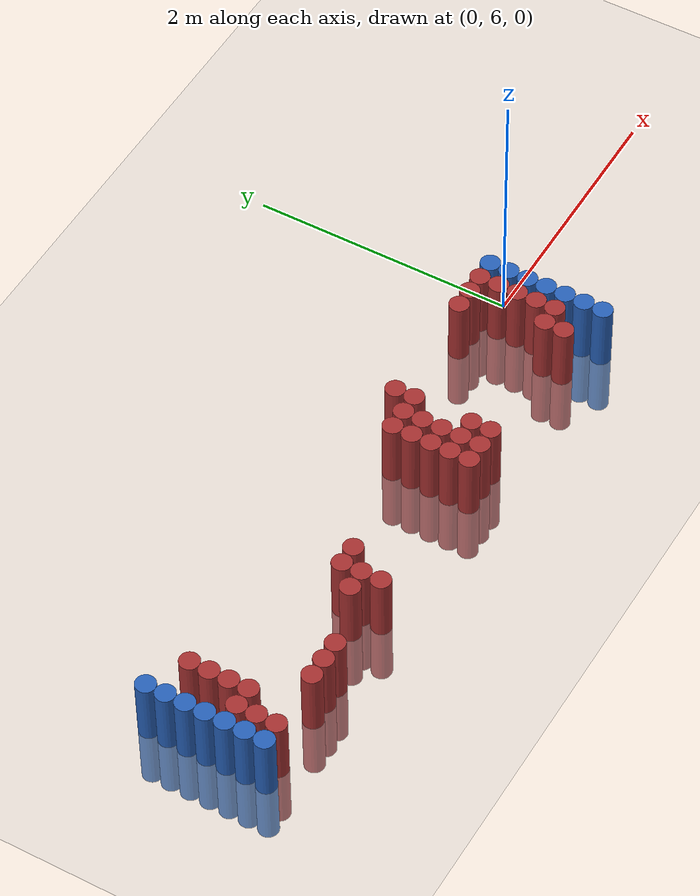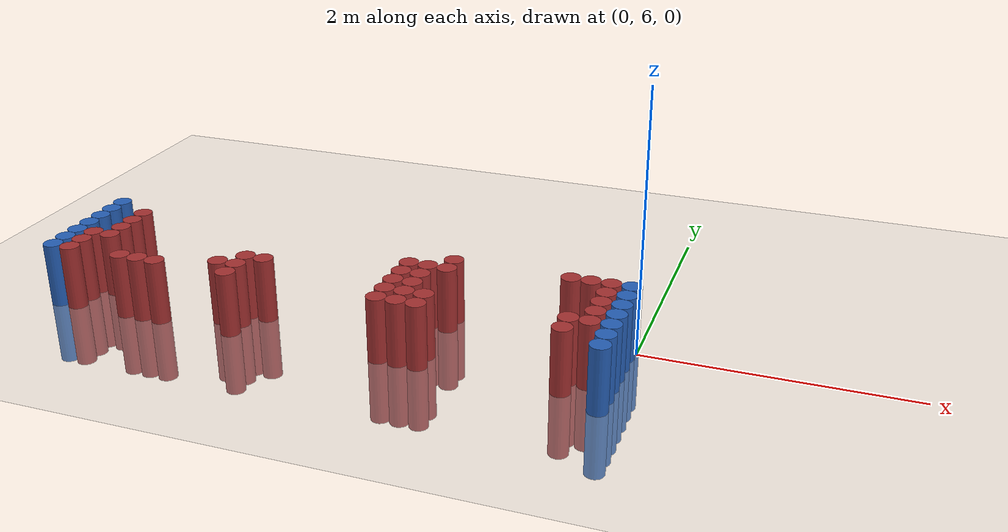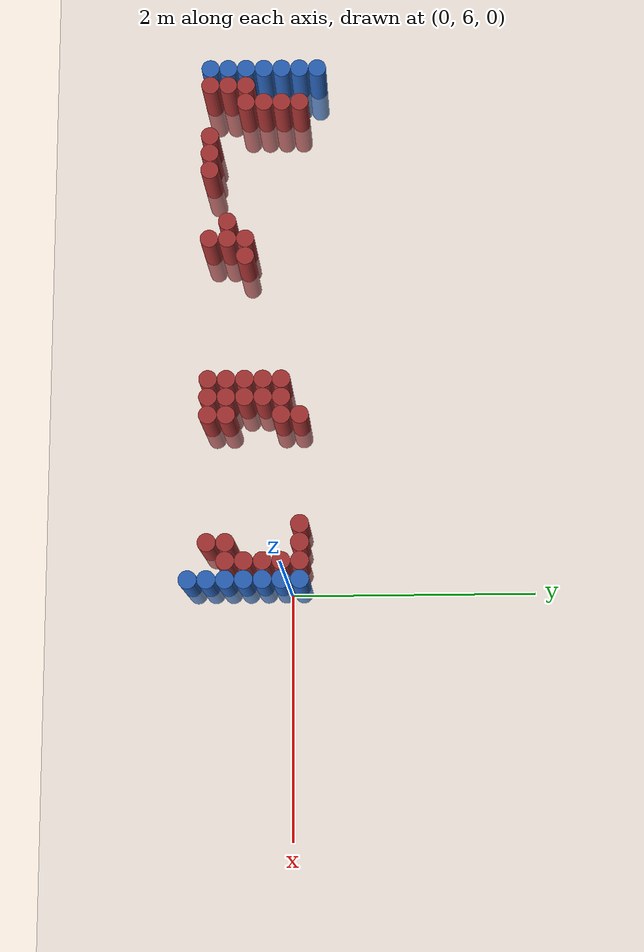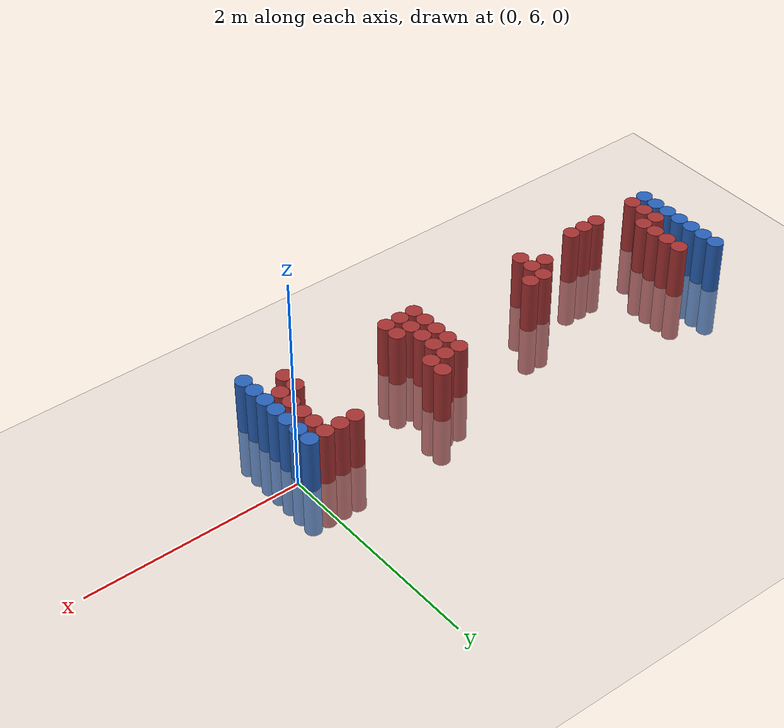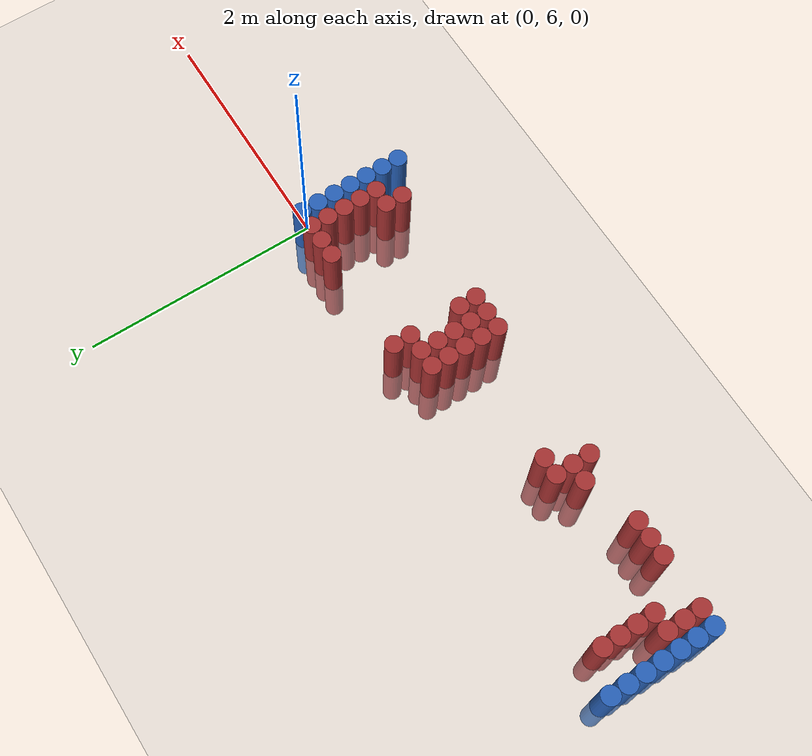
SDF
<sdf version="1.6">
 <world name="default">
  <model name="ground_plane">
   <static>1</static>
   <link name="link">
    <collision name="collision">
     <geometry><plane><normal>0 0 1</normal><size>100 100</size></plane></geometry>
     <surface><friction><ode><mu>100</mu><mu2>50</mu2></ode></friction></surface>
    </collision>
    <visual name="visual">
     <cast_shadows>0</cast_shadows>
     <geometry><plane><normal>0 0 1</normal><size>100 100</size></plane></geometry>
     <material>
      <script><uri>file://media/materials/scripts/gazebo.material</uri><name>Gazebo/Grey</name></script>
     </material>
    </visual>
   </link>
  </model>
  <model name="unit_cylinder_97">
   <static>1</static>
   <pose>-4.425000 5.325000 0.000000 0.000000 0.000000 0.000000</pose>
   <link name="link">
    <inertial>
     <mass>1</mass>
     <inertia><ixx>0.145833</ixx><ixy>0</ixy><ixz>0</ixz><iyy>0.145833</iyy><iyz>0</iyz><izz>0.125</izz></inertia>
    </inertial>
    <collision name="collision">
     <geometry><cylinder><radius>0.075000</radius><length>1</length></cylinder></geometry>
    </collision>
    <visual name="visual">
     <geometry><cylinder><radius>0.075000</radius><length>1</length></cylinder></geometry>
     <material>
      <ambient>0.152000 0.379000 0.720000 1</ambient>
      <diffuse>0.152000 0.379000 0.720000 1</diffuse>
     </material>
     <material>
      <script><name>Gazebo/Grey</name><uri>file://media/materials/scripts/gazebo.material</uri></script>
     </material>
    </visual>
   </link>
  </model>
  <model name="unit_cylinder_98">
   <static>1</static>
   <pose>-4.425000 5.475000 0.000000 0.000000 0.000000 0.000000</pose>
   <link name="link">
    <inertial>
     <mass>1</mass>
     <inertia><ixx>0.145833</ixx><ixy>0</ixy><ixz>0</ixz><iyy>0.145833</iyy><iyz>0</iyz><izz>0.125</izz></inertia>
    </inertial>
    <collision name="collision">
     <geometry><cylinder><radius>0.075000</radius><length>1</length></cylinder></geometry>
    </collision>
    <visual name="visual">
     <geometry><cylinder><radius>0.075000</radius><length>1</length></cylinder></geometry>
     <material>
      <ambient>0.152000 0.379000 0.720000 1</ambient>
      <diffuse>0.152000 0.379000 0.720000 1</diffuse>
     </material>
     <material>
      <script><name>Gazebo/Grey</name><uri>file://media/materials/scripts/gazebo.material</uri></script>
     </material>
    </visual>
   </link>
  </model>
  <model name="unit_cylinder_99">
   <static>1</static>
   <pose>-4.425000 5.625000 0.000000 0.000000 0.000000 0.000000</pose>
   <link name="link">
    <inertial>
     <mass>1</mass>
     <inertia><ixx>0.145833</ixx><ixy>0</ixy><ixz>0</ixz><iyy>0.145833</iyy><iyz>0</iyz><izz>0.125</izz></inertia>
    </inertial>
    <collision name="collision">
     <geometry><cylinder><radius>0.075000</radius><length>1</length></cylinder></geometry>
    </collision>
    <visual name="visual">
     <geometry><cylinder><radius>0.075000</radius><length>1</length></cylinder></geometry>
     <material>
      <ambient>0.152000 0.379000 0.720000 1</ambient>
      <diffuse>0.152000 0.379000 0.720000 1</diffuse>
     </material>
     <material>
      <script><name>Gazebo/Grey</name><uri>file://media/materials/scripts/gazebo.material</uri></script>
     </material>
    </visual>
   </link>
  </model>
  <model name="unit_cylinder_100">
   <static>1</static>
   <pose>-4.425000 5.775000 0.000000 0.000000 0.000000 0.000000</pose>
   <link name="link">
    <inertial>
     <mass>1</mass>
     <inertia><ixx>0.145833</ixx><ixy>0</ixy><ixz>0</ixz><iyy>0.145833</iyy><iyz>0</iyz><izz>0.125</izz></inertia>
    </inertial>
    <collision name="collision">
     <geometry><cylinder><radius>0.075000</radius><length>1</length></cylinder></geometry>
    </collision>
    <visual name="visual">
     <geometry><cylinder><radius>0.075000</radius><length>1</length></cylinder></geometry>
     <material>
      <ambient>0.152000 0.379000 0.720000 1</ambient>
      <diffuse>0.152000 0.379000 0.720000 1</diffuse>
     </material>
     <material>
      <script><name>Gazebo/Grey</name><uri>file://media/materials/scripts/gazebo.material</uri></script>
     </material>
    </visual>
   </link>
  </model>
  <model name="unit_cylinder_101">
   <static>1</static>
   <pose>-4.425000 5.925000 0.000000 0.000000 0.000000 0.000000</pose>
   <link name="link">
    <inertial>
     <mass>1</mass>
     <inertia><ixx>0.145833</ixx><ixy>0</ixy><ixz>0</ixz><iyy>0.145833</iyy><iyz>0</iyz><izz>0.125</izz></inertia>
    </inertial>
    <collision name="collision">
     <geometry><cylinder><radius>0.075000</radius><length>1</length></cylinder></geometry>
    </collision>
    <visual name="visual">
     <geometry><cylinder><radius>0.075000</radius><length>1</length></cylinder></geometry>
     <material>
      <ambient>0.152000 0.379000 0.720000 1</ambient>
      <diffuse>0.152000 0.379000 0.720000 1</diffuse>
     </material>
     <material>
      <script><name>Gazebo/Grey</name><uri>file://media/materials/scripts/gazebo.material</uri></script>
     </material>
    </visual>
   </link>
  </model>
  <model name="unit_cylinder_102">
   <static>1</static>
   <pose>-4.425000 6.075000 0.000000 0.000000 0.000000 0.000000</pose>
   <link name="link">
    <inertial>
     <mass>1</mass>
     <inertia><ixx>0.145833</ixx><ixy>0</ixy><ixz>0</ixz><iyy>0.145833</iyy><iyz>0</iyz><izz>0.125</izz></inertia>
    </inertial>
    <collision name="collision">
     <geometry><cylinder><radius>0.075000</radius><length>1</length></cylinder></geometry>
    </collision>
    <visual name="visual">
     <geometry><cylinder><radius>0.075000</radius><length>1</length></cylinder></geometry>
     <material>
      <ambient>0.152000 0.379000 0.720000 1</ambient>
      <diffuse>0.152000 0.379000 0.720000 1</diffuse>
     </material>
     <material>
      <script><name>Gazebo/Grey</name><uri>file://media/materials/scripts/gazebo.material</uri></script>
     </material>
    </visual>
   </link>
  </model>
  <model name="unit_cylinder_103">
   <static>1</static>
   <pose>-4.425000 6.225000 0.000000 0.000000 0.000000 0.000000</pose>
   <link name="link">
    <inertial>
     <mass>1</mass>
     <inertia><ixx>0.145833</ixx><ixy>0</ixy><ixz>0</ixz><iyy>0.145833</iyy><iyz>0</iyz><izz>0.125</izz></inertia>
    </inertial>
    <collision name="collision">
     <geometry><cylinder><radius>0.075000</radius><length>1</length></cylinder></geometry>
    </collision>
    <visual name="visual">
     <geometry><cylinder><radius>0.075000</radius><length>1</length></cylinder></geometry>
     <material>
      <ambient>0.152000 0.379000 0.720000 1</ambient>
      <diffuse>0.152000 0.379000 0.720000 1</diffuse>
     </material>
     <material>
      <script><name>Gazebo/Grey</name><uri>file://media/materials/scripts/gazebo.material</uri></script>
     </material>
    </visual>
   </link>
  </model>
  <model name="unit_cylinder_127">
   <static>1</static>
   <pose>-4.275000 5.325000 0.000000 0.000000 0.000000 0.000000</pose>
   <link name="link">
    <inertial>
     <mass>1</mass>
     <inertia><ixx>0.145833</ixx><ixy>0</ixy><ixz>0</ixz><iyy>0.145833</iyy><iyz>0</iyz><izz>0.125</izz></inertia>
    </inertial>
    <collision name="collision">
     <geometry><cylinder><radius>0.075000</radius><length>1</length></cylinder></geometry>
    </collision>
    <visual name="visual">
     <geometry><cylinder><radius>0.075000</radius><length>1</length></cylinder></geometry>
     <material>
      <ambient>0.648000 0.192000 0.192000 1</ambient>
      <diffuse>0.648000 0.192000 0.192000 1</diffuse>
     </material>
     <material>
      <script><name>Gazebo/Grey</name><uri>file://media/materials/scripts/gazebo.material</uri></script>
     </material>
    </visual>
   </link>
  </model>
  <model name="unit_cylinder_128">
   <static>1</static>
   <pose>-4.275000 5.475000 0.000000 0.000000 0.000000 0.000000</pose>
   <link name="link">
    <inertial>
     <mass>1</mass>
     <inertia><ixx>0.145833</ixx><ixy>0</ixy><ixz>0</ixz><iyy>0.145833</iyy><iyz>0</iyz><izz>0.125</izz></inertia>
    </inertial>
    <collision name="collision">
     <geometry><cylinder><radius>0.075000</radius><length>1</length></cylinder></geometry>
    </collision>
    <visual name="visual">
     <geometry><cylinder><radius>0.075000</radius><length>1</length></cylinder></geometry>
     <material>
      <ambient>0.648000 0.192000 0.192000 1</ambient>
      <diffuse>0.648000 0.192000 0.192000 1</diffuse>
     </material>
     <material>
      <script><name>Gazebo/Grey</name><uri>file://media/materials/scripts/gazebo.material</uri></script>
     </material>
    </visual>
   </link>
  </model>
  <model name="unit_cylinder_129">
   <static>1</static>
   <pose>-4.275000 5.625000 0.000000 0.000000 0.000000 0.000000</pose>
   <link name="link">
    <inertial>
     <mass>1</mass>
     <inertia><ixx>0.145833</ixx><ixy>0</ixy><ixz>0</ixz><iyy>0.145833</iyy><iyz>0</iyz><izz>0.125</izz></inertia>
    </inertial>
    <collision name="collision">
     <geometry><cylinder><radius>0.075000</radius><length>1</length></cylinder></geometry>
    </collision>
    <visual name="visual">
     <geometry><cylinder><radius>0.075000</radius><length>1</length></cylinder></geometry>
     <material>
      <ambient>0.648000 0.192000 0.192000 1</ambient>
      <diffuse>0.648000 0.192000 0.192000 1</diffuse>
     </material>
     <material>
      <script><name>Gazebo/Grey</name><uri>file://media/materials/scripts/gazebo.material</uri></script>
     </material>
    </visual>
   </link>
  </model>
  <model name="unit_cylinder_144">
   <static>1</static>
   <pose>-4.125000 5.625000 0.000000 0.000000 0.000000 0.000000</pose>
   <link name="link">
    <inertial>
     <mass>1</mass>
     <inertia><ixx>0.145833</ixx><ixy>0</ixy><ixz>0</ixz><iyy>0.145833</iyy><iyz>0</iyz><izz>0.125</izz></inertia>
    </inertial>
    <collision name="collision">
     <geometry><cylinder><radius>0.075000</radius><length>1</length></cylinder></geometry>
    </collision>
    <visual name="visual">
     <geometry><cylinder><radius>0.075000</radius><length>1</length></cylinder></geometry>
     <material>
      <ambient>0.648000 0.192000 0.192000 1</ambient>
      <diffuse>0.648000 0.192000 0.192000 1</diffuse>
     </material>
     <material>
      <script><name>Gazebo/Grey</name><uri>file://media/materials/scripts/gazebo.material</uri></script>
     </material>
    </visual>
   </link>
  </model>
  <model name="unit_cylinder_145">
   <static>1</static>
   <pose>-4.125000 5.775000 0.000000 0.000000 0.000000 0.000000</pose>
   <link name="link">
    <inertial>
     <mass>1</mass>
     <inertia><ixx>0.145833</ixx><ixy>0</ixy><ixz>0</ixz><iyy>0.145833</iyy><iyz>0</iyz><izz>0.125</izz></inertia>
    </inertial>
    <collision name="collision">
     <geometry><cylinder><radius>0.075000</radius><length>1</length></cylinder></geometry>
    </collision>
    <visual name="visual">
     <geometry><cylinder><radius>0.075000</radius><length>1</length></cylinder></geometry>
     <material>
      <ambient>0.648000 0.192000 0.192000 1</ambient>
      <diffuse>0.648000 0.192000 0.192000 1</diffuse>
     </material>
     <material>
      <script><name>Gazebo/Grey</name><uri>file://media/materials/scripts/gazebo.material</uri></script>
     </material>
    </visual>
   </link>
  </model>
  <model name="unit_cylinder_146">
   <static>1</static>
   <pose>-4.125000 5.925000 0.000000 0.000000 0.000000 0.000000</pose>
   <link name="link">
    <inertial>
     <mass>1</mass>
     <inertia><ixx>0.145833</ixx><ixy>0</ixy><ixz>0</ixz><iyy>0.145833</iyy><iyz>0</iyz><izz>0.125</izz></inertia>
    </inertial>
    <collision name="collision">
     <geometry><cylinder><radius>0.075000</radius><length>1</length></cylinder></geometry>
    </collision>
    <visual name="visual">
     <geometry><cylinder><radius>0.075000</radius><length>1</length></cylinder></geometry>
     <material>
      <ambient>0.648000 0.192000 0.192000 1</ambient>
      <diffuse>0.648000 0.192000 0.192000 1</diffuse>
     </material>
     <material>
      <script><name>Gazebo/Grey</name><uri>file://media/materials/scripts/gazebo.material</uri></script>
     </material>
    </visual>
   </link>
  </model>
  <model name="unit_cylinder_147">
   <static>1</static>
   <pose>-4.125000 6.075000 0.000000 0.000000 0.000000 0.000000</pose>
   <link name="link">
    <inertial>
     <mass>1</mass>
     <inertia><ixx>0.145833</ixx><ixy>0</ixy><ixz>0</ixz><iyy>0.145833</iyy><iyz>0</iyz><izz>0.125</izz></inertia>
    </inertial>
    <collision name="collision">
     <geometry><cylinder><radius>0.075000</radius><length>1</length></cylinder></geometry>
    </collision>
    <visual name="visual">
     <geometry><cylinder><radius>0.075000</radius><length>1</length></cylinder></geometry>
     <material>
      <ambient>0.648000 0.192000 0.192000 1</ambient>
      <diffuse>0.648000 0.192000 0.192000 1</diffuse>
     </material>
     <material>
      <script><name>Gazebo/Grey</name><uri>file://media/materials/scripts/gazebo.material</uri></script>
     </material>
    </visual>
   </link>
  </model>
  <model name="unit_cylinder_165">
   <static>1</static>
   <pose>-3.825000 5.325000 0.000000 0.000000 0.000000 0.000000</pose>
   <link name="link">
    <inertial>
     <mass>1</mass>
     <inertia><ixx>0.145833</ixx><ixy>0</ixy><ixz>0</ixz><iyy>0.145833</iyy><iyz>0</iyz><izz>0.125</izz></inertia>
    </inertial>
    <collision name="collision">
     <geometry><cylinder><radius>0.075000</radius><length>1</length></cylinder></geometry>
    </collision>
    <visual name="visual">
     <geometry><cylinder><radius>0.075000</radius><length>1</length></cylinder></geometry>
     <material>
      <ambient>0.648000 0.192000 0.192000 1</ambient>
      <diffuse>0.648000 0.192000 0.192000 1</diffuse>
     </material>
     <material>
      <script><name>Gazebo/Grey</name><uri>file://media/materials/scripts/gazebo.material</uri></script>
     </material>
    </visual>
   </link>
  </model>
  <model name="unit_cylinder_172">
   <static>1</static>
   <pose>-3.675000 5.325000 0.000000 0.000000 0.000000 0.000000</pose>
   <link name="link">
    <inertial>
     <mass>1</mass>
     <inertia><ixx>0.145833</ixx><ixy>0</ixy><ixz>0</ixz><iyy>0.145833</iyy><iyz>0</iyz><izz>0.125</izz></inertia>
    </inertial>
    <collision name="collision">
     <geometry><cylinder><radius>0.075000</radius><length>1</length></cylinder></geometry>
    </collision>
    <visual name="visual">
     <geometry><cylinder><radius>0.075000</radius><length>1</length></cylinder></geometry>
     <material>
      <ambient>0.648000 0.192000 0.192000 1</ambient>
      <diffuse>0.648000 0.192000 0.192000 1</diffuse>
     </material>
     <material>
      <script><name>Gazebo/Grey</name><uri>file://media/materials/scripts/gazebo.material</uri></script>
     </material>
    </visual>
   </link>
  </model>
  <model name="unit_cylinder_177">
   <static>1</static>
   <pose>-3.525000 5.325000 0.000000 0.000000 0.000000 0.000000</pose>
   <link name="link">
    <inertial>
     <mass>1</mass>
     <inertia><ixx>0.145833</ixx><ixy>0</ixy><ixz>0</ixz><iyy>0.145833</iyy><iyz>0</iyz><izz>0.125</izz></inertia>
    </inertial>
    <collision name="collision">
     <geometry><cylinder><radius>0.075000</radius><length>1</length></cylinder></geometry>
    </collision>
    <visual name="visual">
     <geometry><cylinder><radius>0.075000</radius><length>1</length></cylinder></geometry>
     <material>
      <ambient>0.648000 0.192000 0.192000 1</ambient>
      <diffuse>0.648000 0.192000 0.192000 1</diffuse>
     </material>
     <material>
      <script><name>Gazebo/Grey</name><uri>file://media/materials/scripts/gazebo.material</uri></script>
     </material>
    </visual>
   </link>
  </model>
  <model name="unit_cylinder_195">
   <static>1</static>
   <pose>-3.075000 5.475000 0.000000 0.000000 0.000000 0.000000</pose>
   <link name="link">
    <inertial>
     <mass>1</mass>
     <inertia><ixx>0.145833</ixx><ixy>0</ixy><ixz>0</ixz><iyy>0.145833</iyy><iyz>0</iyz><izz>0.125</izz></inertia>
    </inertial>
    <collision name="collision">
     <geometry><cylinder><radius>0.075000</radius><length>1</length></cylinder></geometry>
    </collision>
    <visual name="visual">
     <geometry><cylinder><radius>0.075000</radius><length>1</length></cylinder></geometry>
     <material>
      <ambient>0.648000 0.192000 0.192000 1</ambient>
      <diffuse>0.648000 0.192000 0.192000 1</diffuse>
     </material>
     <material>
      <script><name>Gazebo/Grey</name><uri>file://media/materials/scripts/gazebo.material</uri></script>
     </material>
    </visual>
   </link>
  </model>
  <model name="unit_cylinder_205">
   <static>1</static>
   <pose>-2.925000 5.325000 0.000000 0.000000 0.000000 0.000000</pose>
   <link name="link">
    <inertial>
     <mass>1</mass>
     <inertia><ixx>0.145833</ixx><ixy>0</ixy><ixz>0</ixz><iyy>0.145833</iyy><iyz>0</iyz><izz>0.125</izz></inertia>
    </inertial>
    <collision name="collision">
     <geometry><cylinder><radius>0.075000</radius><length>1</length></cylinder></geometry>
    </collision>
    <visual name="visual">
     <geometry><cylinder><radius>0.075000</radius><length>1</length></cylinder></geometry>
     <material>
      <ambient>0.648000 0.192000 0.192000 1</ambient>
      <diffuse>0.648000 0.192000 0.192000 1</diffuse>
     </material>
     <material>
      <script><name>Gazebo/Grey</name><uri>file://media/materials/scripts/gazebo.material</uri></script>
     </material>
    </visual>
   </link>
  </model>
  <model name="unit_cylinder_206">
   <static>1</static>
   <pose>-2.925000 5.475000 0.000000 0.000000 0.000000 0.000000</pose>
   <link name="link">
    <inertial>
     <mass>1</mass>
     <inertia><ixx>0.145833</ixx><ixy>0</ixy><ixz>0</ixz><iyy>0.145833</iyy><iyz>0</iyz><izz>0.125</izz></inertia>
    </inertial>
    <collision name="collision">
     <geometry><cylinder><radius>0.075000</radius><length>1</length></cylinder></geometry>
    </collision>
    <visual name="visual">
     <geometry><cylinder><radius>0.075000</radius><length>1</length></cylinder></geometry>
     <material>
      <ambient>0.648000 0.192000 0.192000 1</ambient>
      <diffuse>0.648000 0.192000 0.192000 1</diffuse>
     </material>
     <material>
      <script><name>Gazebo/Grey</name><uri>file://media/materials/scripts/gazebo.material</uri></script>
     </material>
    </visual>
   </link>
  </model>
  <model name="unit_cylinder_207">
   <static>1</static>
   <pose>-2.925000 5.625000 0.000000 0.000000 0.000000 0.000000</pose>
   <link name="link">
    <inertial>
     <mass>1</mass>
     <inertia><ixx>0.145833</ixx><ixy>0</ixy><ixz>0</ixz><iyy>0.145833</iyy><iyz>0</iyz><izz>0.125</izz></inertia>
    </inertial>
    <collision name="collision">
     <geometry><cylinder><radius>0.075000</radius><length>1</length></cylinder></geometry>
    </collision>
    <visual name="visual">
     <geometry><cylinder><radius>0.075000</radius><length>1</length></cylinder></geometry>
     <material>
      <ambient>0.648000 0.192000 0.192000 1</ambient>
      <diffuse>0.648000 0.192000 0.192000 1</diffuse>
     </material>
     <material>
      <script><name>Gazebo/Grey</name><uri>file://media/materials/scripts/gazebo.material</uri></script>
     </material>
    </visual>
   </link>
  </model>
  <model name="unit_cylinder_212">
   <static>1</static>
   <pose>-2.775000 5.625000 0.000000 0.000000 0.000000 0.000000</pose>
   <link name="link">
    <inertial>
     <mass>1</mass>
     <inertia><ixx>0.145833</ixx><ixy>0</ixy><ixz>0</ixz><iyy>0.145833</iyy><iyz>0</iyz><izz>0.125</izz></inertia>
    </inertial>
    <collision name="collision">
     <geometry><cylinder><radius>0.075000</radius><length>1</length></cylinder></geometry>
    </collision>
    <visual name="visual">
     <geometry><cylinder><radius>0.075000</radius><length>1</length></cylinder></geometry>
     <material>
      <ambient>0.648000 0.192000 0.192000 1</ambient>
      <diffuse>0.648000 0.192000 0.192000 1</diffuse>
     </material>
     <material>
      <script><name>Gazebo/Grey</name><uri>file://media/materials/scripts/gazebo.material</uri></script>
     </material>
    </visual>
   </link>
  </model>
  <model name="unit_cylinder_230">
   <static>1</static>
   <pose>-1.725000 5.325000 0.000000 0.000000 0.000000 0.000000</pose>
   <link name="link">
    <inertial>
     <mass>1</mass>
     <inertia><ixx>0.145833</ixx><ixy>0</ixy><ixz>0</ixz><iyy>0.145833</iyy><iyz>0</iyz><izz>0.125</izz></inertia>
    </inertial>
    <collision name="collision">
     <geometry><cylinder><radius>0.075000</radius><length>1</length></cylinder></geometry>
    </collision>
    <visual name="visual">
     <geometry><cylinder><radius>0.075000</radius><length>1</length></cylinder></geometry>
     <material>
      <ambient>0.648000 0.192000 0.192000 1</ambient>
      <diffuse>0.648000 0.192000 0.192000 1</diffuse>
     </material>
     <material>
      <script><name>Gazebo/Grey</name><uri>file://media/materials/scripts/gazebo.material</uri></script>
     </material>
    </visual>
   </link>
  </model>
  <model name="unit_cylinder_231">
   <static>1</static>
   <pose>-1.725000 5.475000 0.000000 0.000000 0.000000 0.000000</pose>
   <link name="link">
    <inertial>
     <mass>1</mass>
     <inertia><ixx>0.145833</ixx><ixy>0</ixy><ixz>0</ixz><iyy>0.145833</iyy><iyz>0</iyz><izz>0.125</izz></inertia>
    </inertial>
    <collision name="collision">
     <geometry><cylinder><radius>0.075000</radius><length>1</length></cylinder></geometry>
    </collision>
    <visual name="visual">
     <geometry><cylinder><radius>0.075000</radius><length>1</length></cylinder></geometry>
     <material>
      <ambient>0.648000 0.192000 0.192000 1</ambient>
      <diffuse>0.648000 0.192000 0.192000 1</diffuse>
     </material>
     <material>
      <script><name>Gazebo/Grey</name><uri>file://media/materials/scripts/gazebo.material</uri></script>
     </material>
    </visual>
   </link>
  </model>
  <model name="unit_cylinder_232">
   <static>1</static>
   <pose>-1.725000 5.625000 0.000000 0.000000 0.000000 0.000000</pose>
   <link name="link">
    <inertial>
     <mass>1</mass>
     <inertia><ixx>0.145833</ixx><ixy>0</ixy><ixz>0</ixz><iyy>0.145833</iyy><iyz>0</iyz><izz>0.125</izz></inertia>
    </inertial>
    <collision name="collision">
     <geometry><cylinder><radius>0.075000</radius><length>1</length></cylinder></geometry>
    </collision>
    <visual name="visual">
     <geometry><cylinder><radius>0.075000</radius><length>1</length></cylinder></geometry>
     <material>
      <ambient>0.648000 0.192000 0.192000 1</ambient>
      <diffuse>0.648000 0.192000 0.192000 1</diffuse>
     </material>
     <material>
      <script><name>Gazebo/Grey</name><uri>file://media/materials/scripts/gazebo.material</uri></script>
     </material>
    </visual>
   </link>
  </model>
  <model name="unit_cylinder_233">
   <static>1</static>
   <pose>-1.725000 5.775000 0.000000 0.000000 0.000000 0.000000</pose>
   <link name="link">
    <inertial>
     <mass>1</mass>
     <inertia><ixx>0.145833</ixx><ixy>0</ixy><ixz>0</ixz><iyy>0.145833</iyy><iyz>0</iyz><izz>0.125</izz></inertia>
    </inertial>
    <collision name="collision">
     <geometry><cylinder><radius>0.075000</radius><length>1</length></cylinder></geometry>
    </collision>
    <visual name="visual">
     <geometry><cylinder><radius>0.075000</radius><length>1</length></cylinder></geometry>
     <material>
      <ambient>0.648000 0.192000 0.192000 1</ambient>
      <diffuse>0.648000 0.192000 0.192000 1</diffuse>
     </material>
     <material>
      <script><name>Gazebo/Grey</name><uri>file://media/materials/scripts/gazebo.material</uri></script>
     </material>
    </visual>
   </link>
  </model>
  <model name="unit_cylinder_234">
   <static>1</static>
   <pose>-1.725000 5.925000 0.000000 0.000000 0.000000 0.000000</pose>
   <link name="link">
    <inertial>
     <mass>1</mass>
     <inertia><ixx>0.145833</ixx><ixy>0</ixy><ixz>0</ixz><iyy>0.145833</iyy><iyz>0</iyz><izz>0.125</izz></inertia>
    </inertial>
    <collision name="collision">
     <geometry><cylinder><radius>0.075000</radius><length>1</length></cylinder></geometry>
    </collision>
    <visual name="visual">
     <geometry><cylinder><radius>0.075000</radius><length>1</length></cylinder></geometry>
     <material>
      <ambient>0.648000 0.192000 0.192000 1</ambient>
      <diffuse>0.648000 0.192000 0.192000 1</diffuse>
     </material>
     <material>
      <script><name>Gazebo/Grey</name><uri>file://media/materials/scripts/gazebo.material</uri></script>
     </material>
    </visual>
   </link>
  </model>
  <model name="unit_cylinder_241">
   <static>1</static>
   <pose>-1.575000 5.325000 0.000000 0.000000 0.000000 0.000000</pose>
   <link name="link">
    <inertial>
     <mass>1</mass>
     <inertia><ixx>0.145833</ixx><ixy>0</ixy><ixz>0</ixz><iyy>0.145833</iyy><iyz>0</iyz><izz>0.125</izz></inertia>
    </inertial>
    <collision name="collision">
     <geometry><cylinder><radius>0.075000</radius><length>1</length></cylinder></geometry>
    </collision>
    <visual name="visual">
     <geometry><cylinder><radius>0.075000</radius><length>1</length></cylinder></geometry>
     <material>
      <ambient>0.648000 0.192000 0.192000 1</ambient>
      <diffuse>0.648000 0.192000 0.192000 1</diffuse>
     </material>
     <material>
      <script><name>Gazebo/Grey</name><uri>file://media/materials/scripts/gazebo.material</uri></script>
     </material>
    </visual>
   </link>
  </model>
  <model name="unit_cylinder_242">
   <static>1</static>
   <pose>-1.575000 5.475000 0.000000 0.000000 0.000000 0.000000</pose>
   <link name="link">
    <inertial>
     <mass>1</mass>
     <inertia><ixx>0.145833</ixx><ixy>0</ixy><ixz>0</ixz><iyy>0.145833</iyy><iyz>0</iyz><izz>0.125</izz></inertia>
    </inertial>
    <collision name="collision">
     <geometry><cylinder><radius>0.075000</radius><length>1</length></cylinder></geometry>
    </collision>
    <visual name="visual">
     <geometry><cylinder><radius>0.075000</radius><length>1</length></cylinder></geometry>
     <material>
      <ambient>0.648000 0.192000 0.192000 1</ambient>
      <diffuse>0.648000 0.192000 0.192000 1</diffuse>
     </material>
     <material>
      <script><name>Gazebo/Grey</name><uri>file://media/materials/scripts/gazebo.material</uri></script>
     </material>
    </visual>
   </link>
  </model>
  <model name="unit_cylinder_243">
   <static>1</static>
   <pose>-1.575000 5.625000 0.000000 0.000000 0.000000 0.000000</pose>
   <link name="link">
    <inertial>
     <mass>1</mass>
     <inertia><ixx>0.145833</ixx><ixy>0</ixy><ixz>0</ixz><iyy>0.145833</iyy><iyz>0</iyz><izz>0.125</izz></inertia>
    </inertial>
    <collision name="collision">
     <geometry><cylinder><radius>0.075000</radius><length>1</length></cylinder></geometry>
    </collision>
    <visual name="visual">
     <geometry><cylinder><radius>0.075000</radius><length>1</length></cylinder></geometry>
     <material>
      <ambient>0.648000 0.192000 0.192000 1</ambient>
      <diffuse>0.648000 0.192000 0.192000 1</diffuse>
     </material>
     <material>
      <script><name>Gazebo/Grey</name><uri>file://media/materials/scripts/gazebo.material</uri></script>
     </material>
    </visual>
   </link>
  </model>
  <model name="unit_cylinder_244">
   <static>1</static>
   <pose>-1.575000 5.775000 0.000000 0.000000 0.000000 0.000000</pose>
   <link name="link">
    <inertial>
     <mass>1</mass>
     <inertia><ixx>0.145833</ixx><ixy>0</ixy><ixz>0</ixz><iyy>0.145833</iyy><iyz>0</iyz><izz>0.125</izz></inertia>
    </inertial>
    <collision name="collision">
     <geometry><cylinder><radius>0.075000</radius><length>1</length></cylinder></geometry>
    </collision>
    <visual name="visual">
     <geometry><cylinder><radius>0.075000</radius><length>1</length></cylinder></geometry>
     <material>
      <ambient>0.648000 0.192000 0.192000 1</ambient>
      <diffuse>0.648000 0.192000 0.192000 1</diffuse>
     </material>
     <material>
      <script><name>Gazebo/Grey</name><uri>file://media/materials/scripts/gazebo.material</uri></script>
     </material>
    </visual>
   </link>
  </model>
  <model name="unit_cylinder_245">
   <static>1</static>
   <pose>-1.575000 5.925000 0.000000 0.000000 0.000000 0.000000</pose>
   <link name="link">
    <inertial>
     <mass>1</mass>
     <inertia><ixx>0.145833</ixx><ixy>0</ixy><ixz>0</ixz><iyy>0.145833</iyy><iyz>0</iyz><izz>0.125</izz></inertia>
    </inertial>
    <collision name="collision">
     <geometry><cylinder><radius>0.075000</radius><length>1</length></cylinder></geometry>
    </collision>
    <visual name="visual">
     <geometry><cylinder><radius>0.075000</radius><length>1</length></cylinder></geometry>
     <material>
      <ambient>0.648000 0.192000 0.192000 1</ambient>
      <diffuse>0.648000 0.192000 0.192000 1</diffuse>
     </material>
     <material>
      <script><name>Gazebo/Grey</name><uri>file://media/materials/scripts/gazebo.material</uri></script>
     </material>
    </visual>
   </link>
  </model>
  <model name="unit_cylinder_252">
   <static>1</static>
   <pose>-1.425000 5.325000 0.000000 0.000000 0.000000 0.000000</pose>
   <link name="link">
    <inertial>
     <mass>1</mass>
     <inertia><ixx>0.145833</ixx><ixy>0</ixy><ixz>0</ixz><iyy>0.145833</iyy><iyz>0</iyz><izz>0.125</izz></inertia>
    </inertial>
    <collision name="collision">
     <geometry><cylinder><radius>0.075000</radius><length>1</length></cylinder></geometry>
    </collision>
    <visual name="visual">
     <geometry><cylinder><radius>0.075000</radius><length>1</length></cylinder></geometry>
     <material>
      <ambient>0.648000 0.192000 0.192000 1</ambient>
      <diffuse>0.648000 0.192000 0.192000 1</diffuse>
     </material>
     <material>
      <script><name>Gazebo/Grey</name><uri>file://media/materials/scripts/gazebo.material</uri></script>
     </material>
    </visual>
   </link>
  </model>
  <model name="unit_cylinder_253">
   <static>1</static>
   <pose>-1.425000 5.475000 0.000000 0.000000 0.000000 0.000000</pose>
   <link name="link">
    <inertial>
     <mass>1</mass>
     <inertia><ixx>0.145833</ixx><ixy>0</ixy><ixz>0</ixz><iyy>0.145833</iyy><iyz>0</iyz><izz>0.125</izz></inertia>
    </inertial>
    <collision name="collision">
     <geometry><cylinder><radius>0.075000</radius><length>1</length></cylinder></geometry>
    </collision>
    <visual name="visual">
     <geometry><cylinder><radius>0.075000</radius><length>1</length></cylinder></geometry>
     <material>
      <ambient>0.648000 0.192000 0.192000 1</ambient>
      <diffuse>0.648000 0.192000 0.192000 1</diffuse>
     </material>
     <material>
      <script><name>Gazebo/Grey</name><uri>file://media/materials/scripts/gazebo.material</uri></script>
     </material>
    </visual>
   </link>
  </model>
  <model name="unit_cylinder_254">
   <static>1</static>
   <pose>-1.425000 5.925000 0.000000 0.000000 0.000000 0.000000</pose>
   <link name="link">
    <inertial>
     <mass>1</mass>
     <inertia><ixx>0.145833</ixx><ixy>0</ixy><ixz>0</ixz><iyy>0.145833</iyy><iyz>0</iyz><izz>0.125</izz></inertia>
    </inertial>
    <collision name="collision">
     <geometry><cylinder><radius>0.075000</radius><length>1</length></cylinder></geometry>
    </collision>
    <visual name="visual">
     <geometry><cylinder><radius>0.075000</radius><length>1</length></cylinder></geometry>
     <material>
      <ambient>0.648000 0.192000 0.192000 1</ambient>
      <diffuse>0.648000 0.192000 0.192000 1</diffuse>
     </material>
     <material>
      <script><name>Gazebo/Grey</name><uri>file://media/materials/scripts/gazebo.material</uri></script>
     </material>
    </visual>
   </link>
  </model>
  <model name="unit_cylinder_255">
   <static>1</static>
   <pose>-1.425000 6.075000 0.000000 0.000000 0.000000 0.000000</pose>
   <link name="link">
    <inertial>
     <mass>1</mass>
     <inertia><ixx>0.145833</ixx><ixy>0</ixy><ixz>0</ixz><iyy>0.145833</iyy><iyz>0</iyz><izz>0.125</izz></inertia>
    </inertial>
    <collision name="collision">
     <geometry><cylinder><radius>0.075000</radius><length>1</length></cylinder></geometry>
    </collision>
    <visual name="visual">
     <geometry><cylinder><radius>0.075000</radius><length>1</length></cylinder></geometry>
     <material>
      <ambient>0.648000 0.192000 0.192000 1</ambient>
      <diffuse>0.648000 0.192000 0.192000 1</diffuse>
     </material>
     <material>
      <script><name>Gazebo/Grey</name><uri>file://media/materials/scripts/gazebo.material</uri></script>
     </material>
    </visual>
   </link>
  </model>
  <model name="unit_cylinder_293">
   <static>1</static>
   <pose>-0.525000 6.075000 0.000000 0.000000 0.000000 0.000000</pose>
   <link name="link">
    <inertial>
     <mass>1</mass>
     <inertia><ixx>0.145833</ixx><ixy>0</ixy><ixz>0</ixz><iyy>0.145833</iyy><iyz>0</iyz><izz>0.125</izz></inertia>
    </inertial>
    <collision name="collision">
     <geometry><cylinder><radius>0.075000</radius><length>1</length></cylinder></geometry>
    </collision>
    <visual name="visual">
     <geometry><cylinder><radius>0.075000</radius><length>1</length></cylinder></geometry>
     <material>
      <ambient>0.648000 0.192000 0.192000 1</ambient>
      <diffuse>0.648000 0.192000 0.192000 1</diffuse>
     </material>
     <material>
      <script><name>Gazebo/Grey</name><uri>file://media/materials/scripts/gazebo.material</uri></script>
     </material>
    </visual>
   </link>
  </model>
  <model name="unit_cylinder_306">
   <static>1</static>
   <pose>-0.375000 5.325000 0.000000 0.000000 0.000000 0.000000</pose>
   <link name="link">
    <inertial>
     <mass>1</mass>
     <inertia><ixx>0.145833</ixx><ixy>0</ixy><ixz>0</ixz><iyy>0.145833</iyy><iyz>0</iyz><izz>0.125</izz></inertia>
    </inertial>
    <collision name="collision">
     <geometry><cylinder><radius>0.075000</radius><length>1</length></cylinder></geometry>
    </collision>
    <visual name="visual">
     <geometry><cylinder><radius>0.075000</radius><length>1</length></cylinder></geometry>
     <material>
      <ambient>0.648000 0.192000 0.192000 1</ambient>
      <diffuse>0.648000 0.192000 0.192000 1</diffuse>
     </material>
     <material>
      <script><name>Gazebo/Grey</name><uri>file://media/materials/scripts/gazebo.material</uri></script>
     </material>
    </visual>
   </link>
  </model>
  <model name="unit_cylinder_307">
   <static>1</static>
   <pose>-0.375000 5.475000 0.000000 0.000000 0.000000 0.000000</pose>
   <link name="link">
    <inertial>
     <mass>1</mass>
     <inertia><ixx>0.145833</ixx><ixy>0</ixy><ixz>0</ixz><iyy>0.145833</iyy><iyz>0</iyz><izz>0.125</izz></inertia>
    </inertial>
    <collision name="collision">
     <geometry><cylinder><radius>0.075000</radius><length>1</length></cylinder></geometry>
    </collision>
    <visual name="visual">
     <geometry><cylinder><radius>0.075000</radius><length>1</length></cylinder></geometry>
     <material>
      <ambient>0.648000 0.192000 0.192000 1</ambient>
      <diffuse>0.648000 0.192000 0.192000 1</diffuse>
     </material>
     <material>
      <script><name>Gazebo/Grey</name><uri>file://media/materials/scripts/gazebo.material</uri></script>
     </material>
    </visual>
   </link>
  </model>
  <model name="unit_cylinder_308">
   <static>1</static>
   <pose>-0.375000 6.075000 0.000000 0.000000 0.000000 0.000000</pose>
   <link name="link">
    <inertial>
     <mass>1</mass>
     <inertia><ixx>0.145833</ixx><ixy>0</ixy><ixz>0</ixz><iyy>0.145833</iyy><iyz>0</iyz><izz>0.125</izz></inertia>
    </inertial>
    <collision name="collision">
     <geometry><cylinder><radius>0.075000</radius><length>1</length></cylinder></geometry>
    </collision>
    <visual name="visual">
     <geometry><cylinder><radius>0.075000</radius><length>1</length></cylinder></geometry>
     <material>
      <ambient>0.648000 0.192000 0.192000 1</ambient>
      <diffuse>0.648000 0.192000 0.192000 1</diffuse>
     </material>
     <material>
      <script><name>Gazebo/Grey</name><uri>file://media/materials/scripts/gazebo.material</uri></script>
     </material>
    </visual>
   </link>
  </model>
  <model name="unit_cylinder_321">
   <static>1</static>
   <pose>-0.225000 5.475000 0.000000 0.000000 0.000000 0.000000</pose>
   <link name="link">
    <inertial>
     <mass>1</mass>
     <inertia><ixx>0.145833</ixx><ixy>0</ixy><ixz>0</ixz><iyy>0.145833</iyy><iyz>0</iyz><izz>0.125</izz></inertia>
    </inertial>
    <collision name="collision">
     <geometry><cylinder><radius>0.075000</radius><length>1</length></cylinder></geometry>
    </collision>
    <visual name="visual">
     <geometry><cylinder><radius>0.075000</radius><length>1</length></cylinder></geometry>
     <material>
      <ambient>0.648000 0.192000 0.192000 1</ambient>
      <diffuse>0.648000 0.192000 0.192000 1</diffuse>
     </material>
     <material>
      <script><name>Gazebo/Grey</name><uri>file://media/materials/scripts/gazebo.material</uri></script>
     </material>
    </visual>
   </link>
  </model>
  <model name="unit_cylinder_322">
   <static>1</static>
   <pose>-0.225000 5.625000 0.000000 0.000000 0.000000 0.000000</pose>
   <link name="link">
    <inertial>
     <mass>1</mass>
     <inertia><ixx>0.145833</ixx><ixy>0</ixy><ixz>0</ixz><iyy>0.145833</iyy><iyz>0</iyz><izz>0.125</izz></inertia>
    </inertial>
    <collision name="collision">
     <geometry><cylinder><radius>0.075000</radius><length>1</length></cylinder></geometry>
    </collision>
    <visual name="visual">
     <geometry><cylinder><radius>0.075000</radius><length>1</length></cylinder></geometry>
     <material>
      <ambient>0.648000 0.192000 0.192000 1</ambient>
      <diffuse>0.648000 0.192000 0.192000 1</diffuse>
     </material>
     <material>
      <script><name>Gazebo/Grey</name><uri>file://media/materials/scripts/gazebo.material</uri></script>
     </material>
    </visual>
   </link>
  </model>
  <model name="unit_cylinder_323">
   <static>1</static>
   <pose>-0.225000 5.775000 0.000000 0.000000 0.000000 0.000000</pose>
   <link name="link">
    <inertial>
     <mass>1</mass>
     <inertia><ixx>0.145833</ixx><ixy>0</ixy><ixz>0</ixz><iyy>0.145833</iyy><iyz>0</iyz><izz>0.125</izz></inertia>
    </inertial>
    <collision name="collision">
     <geometry><cylinder><radius>0.075000</radius><length>1</length></cylinder></geometry>
    </collision>
    <visual name="visual">
     <geometry><cylinder><radius>0.075000</radius><length>1</length></cylinder></geometry>
     <material>
      <ambient>0.648000 0.192000 0.192000 1</ambient>
      <diffuse>0.648000 0.192000 0.192000 1</diffuse>
     </material>
     <material>
      <script><name>Gazebo/Grey</name><uri>file://media/materials/scripts/gazebo.material</uri></script>
     </material>
    </visual>
   </link>
  </model>
  <model name="unit_cylinder_324">
   <static>1</static>
   <pose>-0.225000 5.925000 0.000000 0.000000 0.000000 0.000000</pose>
   <link name="link">
    <inertial>
     <mass>1</mass>
     <inertia><ixx>0.145833</ixx><ixy>0</ixy><ixz>0</ixz><iyy>0.145833</iyy><iyz>0</iyz><izz>0.125</izz></inertia>
    </inertial>
    <collision name="collision">
     <geometry><cylinder><radius>0.075000</radius><length>1</length></cylinder></geometry>
    </collision>
    <visual name="visual">
     <geometry><cylinder><radius>0.075000</radius><length>1</length></cylinder></geometry>
     <material>
      <ambient>0.648000 0.192000 0.192000 1</ambient>
      <diffuse>0.648000 0.192000 0.192000 1</diffuse>
     </material>
     <material>
      <script><name>Gazebo/Grey</name><uri>file://media/materials/scripts/gazebo.material</uri></script>
     </material>
    </visual>
   </link>
  </model>
  <model name="unit_cylinder_325">
   <static>1</static>
   <pose>-0.225000 6.075000 0.000000 0.000000 0.000000 0.000000</pose>
   <link name="link">
    <inertial>
     <mass>1</mass>
     <inertia><ixx>0.145833</ixx><ixy>0</ixy><ixz>0</ixz><iyy>0.145833</iyy><iyz>0</iyz><izz>0.125</izz></inertia>
    </inertial>
    <collision name="collision">
     <geometry><cylinder><radius>0.075000</radius><length>1</length></cylinder></geometry>
    </collision>
    <visual name="visual">
     <geometry><cylinder><radius>0.075000</radius><length>1</length></cylinder></geometry>
     <material>
      <ambient>0.648000 0.192000 0.192000 1</ambient>
      <diffuse>0.648000 0.192000 0.192000 1</diffuse>
     </material>
     <material>
      <script><name>Gazebo/Grey</name><uri>file://media/materials/scripts/gazebo.material</uri></script>
     </material>
    </visual>
   </link>
  </model>
  <model name="unit_cylinder_335">
   <static>1</static>
   <pose>-0.075000 5.175000 0.000000 0.000000 0.000000 0.000000</pose>
   <link name="link">
    <inertial>
     <mass>1</mass>
     <inertia><ixx>0.145833</ixx><ixy>0</ixy><ixz>0</ixz><iyy>0.145833</iyy><iyz>0</iyz><izz>0.125</izz></inertia>
    </inertial>
    <collision name="collision">
     <geometry><cylinder><radius>0.075000</radius><length>1</length></cylinder></geometry>
    </collision>
    <visual name="visual">
     <geometry><cylinder><radius>0.075000</radius><length>1</length></cylinder></geometry>
     <material>
      <ambient>0.152000 0.379000 0.720000 1</ambient>
      <diffuse>0.152000 0.379000 0.720000 1</diffuse>
     </material>
     <material>
      <script><name>Gazebo/Grey</name><uri>file://media/materials/scripts/gazebo.material</uri></script>
     </material>
    </visual>
   </link>
  </model>
  <model name="unit_cylinder_336">
   <static>1</static>
   <pose>-0.075000 5.325000 0.000000 0.000000 0.000000 0.000000</pose>
   <link name="link">
    <inertial>
     <mass>1</mass>
     <inertia><ixx>0.145833</ixx><ixy>0</ixy><ixz>0</ixz><iyy>0.145833</iyy><iyz>0</iyz><izz>0.125</izz></inertia>
    </inertial>
    <collision name="collision">
     <geometry><cylinder><radius>0.075000</radius><length>1</length></cylinder></geometry>
    </collision>
    <visual name="visual">
     <geometry><cylinder><radius>0.075000</radius><length>1</length></cylinder></geometry>
     <material>
      <ambient>0.152000 0.379000 0.720000 1</ambient>
      <diffuse>0.152000 0.379000 0.720000 1</diffuse>
     </material>
     <material>
      <script><name>Gazebo/Grey</name><uri>file://media/materials/scripts/gazebo.material</uri></script>
     </material>
    </visual>
   </link>
  </model>
  <model name="unit_cylinder_337">
   <static>1</static>
   <pose>-0.075000 5.475000 0.000000 0.000000 0.000000 0.000000</pose>
   <link name="link">
    <inertial>
     <mass>1</mass>
     <inertia><ixx>0.145833</ixx><ixy>0</ixy><ixz>0</ixz><iyy>0.145833</iyy><iyz>0</iyz><izz>0.125</izz></inertia>
    </inertial>
    <collision name="collision">
     <geometry><cylinder><radius>0.075000</radius><length>1</length></cylinder></geometry>
    </collision>
    <visual name="visual">
     <geometry><cylinder><radius>0.075000</radius><length>1</length></cylinder></geometry>
     <material>
      <ambient>0.152000 0.379000 0.720000 1</ambient>
      <diffuse>0.152000 0.379000 0.720000 1</diffuse>
     </material>
     <material>
      <script><name>Gazebo/Grey</name><uri>file://media/materials/scripts/gazebo.material</uri></script>
     </material>
    </visual>
   </link>
  </model>
  <model name="unit_cylinder_338">
   <static>1</static>
   <pose>-0.075000 5.625000 0.000000 0.000000 0.000000 0.000000</pose>
   <link name="link">
    <inertial>
     <mass>1</mass>
     <inertia><ixx>0.145833</ixx><ixy>0</ixy><ixz>0</ixz><iyy>0.145833</iyy><iyz>0</iyz><izz>0.125</izz></inertia>
    </inertial>
    <collision name="collision">
     <geometry><cylinder><radius>0.075000</radius><length>1</length></cylinder></geometry>
    </collision>
    <visual name="visual">
     <geometry><cylinder><radius>0.075000</radius><length>1</length></cylinder></geometry>
     <material>
      <ambient>0.152000 0.379000 0.720000 1</ambient>
      <diffuse>0.152000 0.379000 0.720000 1</diffuse>
     </material>
     <material>
      <script><name>Gazebo/Grey</name><uri>file://media/materials/scripts/gazebo.material</uri></script>
     </material>
    </visual>
   </link>
  </model>
  <model name="unit_cylinder_339">
   <static>1</static>
   <pose>-0.075000 5.775000 0.000000 0.000000 0.000000 0.000000</pose>
   <link name="link">
    <inertial>
     <mass>1</mass>
     <inertia><ixx>0.145833</ixx><ixy>0</ixy><ixz>0</ixz><iyy>0.145833</iyy><iyz>0</iyz><izz>0.125</izz></inertia>
    </inertial>
    <collision name="collision">
     <geometry><cylinder><radius>0.075000</radius><length>1</length></cylinder></geometry>
    </collision>
    <visual name="visual">
     <geometry><cylinder><radius>0.075000</radius><length>1</length></cylinder></geometry>
     <material>
      <ambient>0.152000 0.379000 0.720000 1</ambient>
      <diffuse>0.152000 0.379000 0.720000 1</diffuse>
     </material>
     <material>
      <script><name>Gazebo/Grey</name><uri>file://media/materials/scripts/gazebo.material</uri></script>
     </material>
    </visual>
   </link>
  </model>
  <model name="unit_cylinder_340">
   <static>1</static>
   <pose>-0.075000 5.925000 0.000000 0.000000 0.000000 0.000000</pose>
   <link name="link">
    <inertial>
     <mass>1</mass>
     <inertia><ixx>0.145833</ixx><ixy>0</ixy><ixz>0</ixz><iyy>0.145833</iyy><iyz>0</iyz><izz>0.125</izz></inertia>
    </inertial>
    <collision name="collision">
     <geometry><cylinder><radius>0.075000</radius><length>1</length></cylinder></geometry>
    </collision>
    <visual name="visual">
     <geometry><cylinder><radius>0.075000</radius><length>1</length></cylinder></geometry>
     <material>
      <ambient>0.152000 0.379000 0.720000 1</ambient>
      <diffuse>0.152000 0.379000 0.720000 1</diffuse>
     </material>
     <material>
      <script><name>Gazebo/Grey</name><uri>file://media/materials/scripts/gazebo.material</uri></script>
     </material>
    </visual>
   </link>
  </model>
  <model name="unit_cylinder_341">
   <static>1</static>
   <pose>-0.075000 6.075000 0.000000 0.000000 0.000000 0.000000</pose>
   <link name="link">
    <inertial>
     <mass>1</mass>
     <inertia><ixx>0.145833</ixx><ixy>0</ixy><ixz>0</ixz><iyy>0.145833</iyy><iyz>0</iyz><izz>0.125</izz></inertia>
    </inertial>
    <collision name="collision">
     <geometry><cylinder><radius>0.075000</radius><length>1</length></cylinder></geometry>
    </collision>
    <visual name="visual">
     <geometry><cylinder><radius>0.075000</radius><length>1</length></cylinder></geometry>
     <material>
      <ambient>0.152000 0.379000 0.720000 1</ambient>
      <diffuse>0.152000 0.379000 0.720000 1</diffuse>
     </material>
     <material>
      <script><name>Gazebo/Grey</name><uri>file://media/materials/scripts/gazebo.material</uri></script>
     </material>
    </visual>
   </link>
  </model>
 </world>
</sdf>
